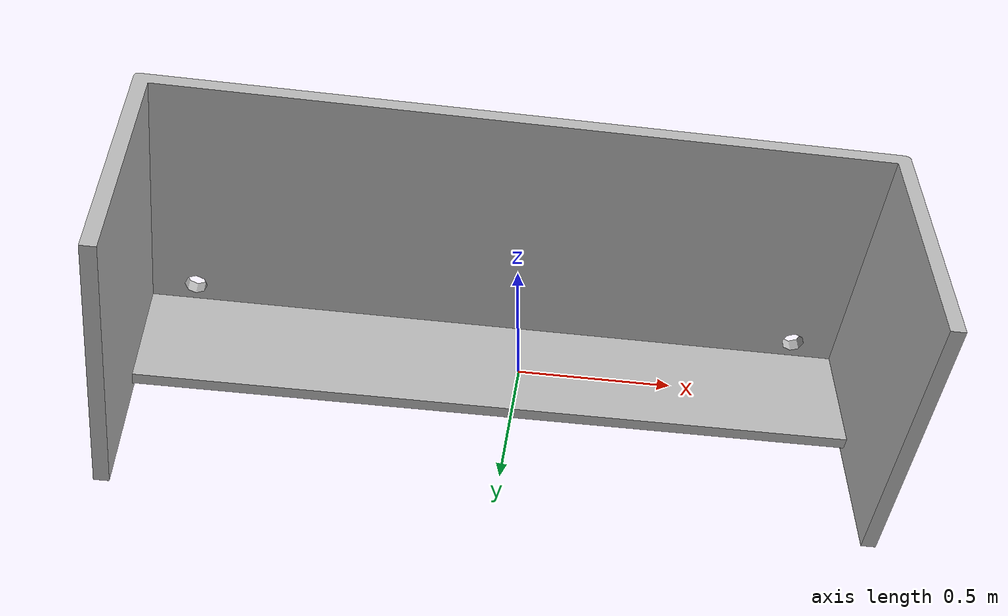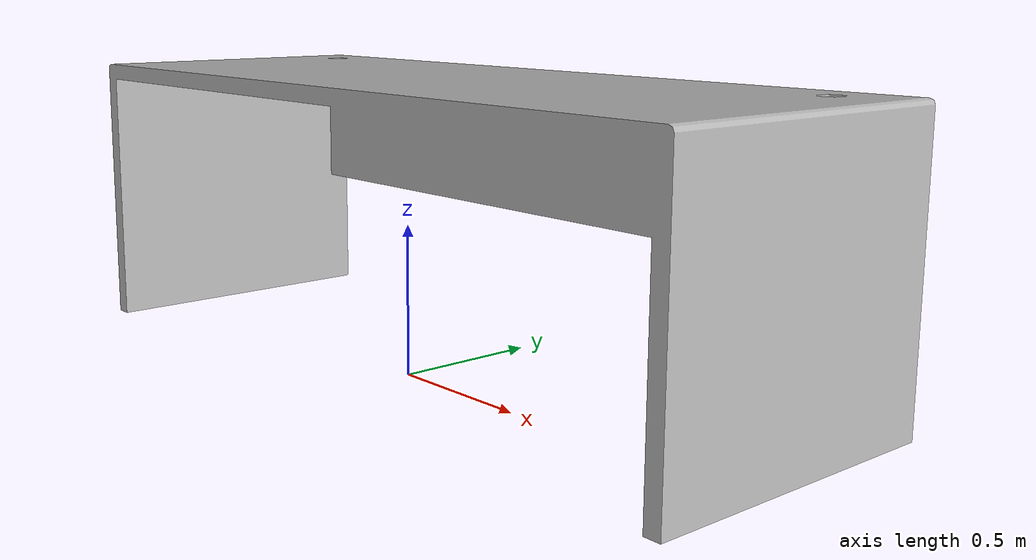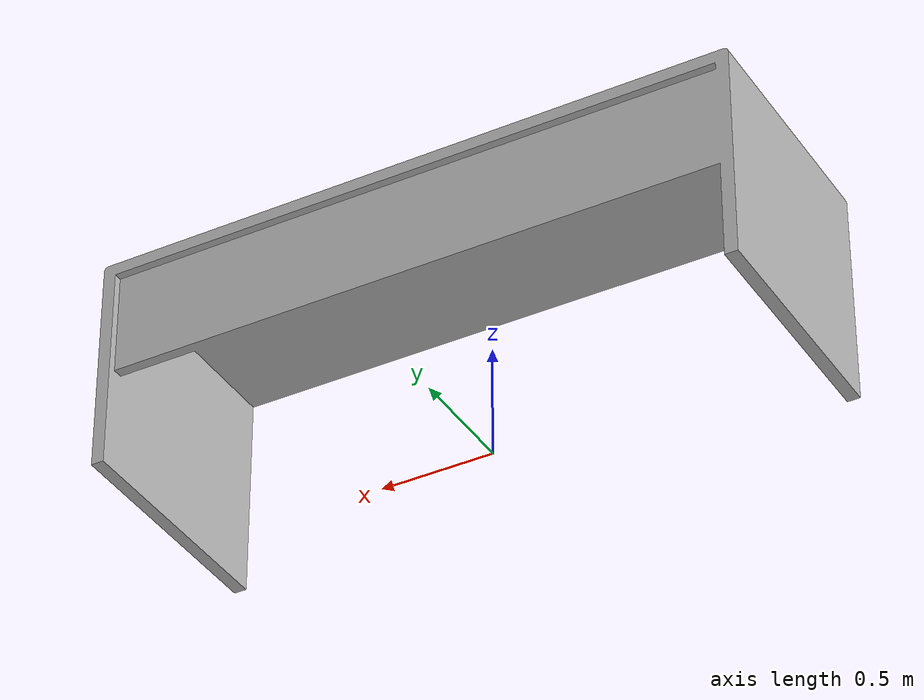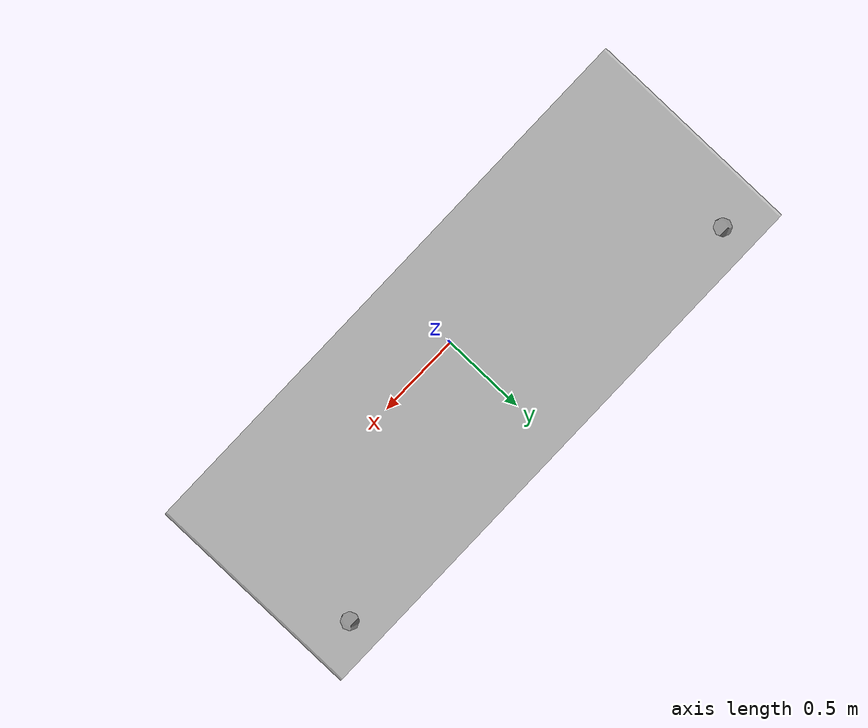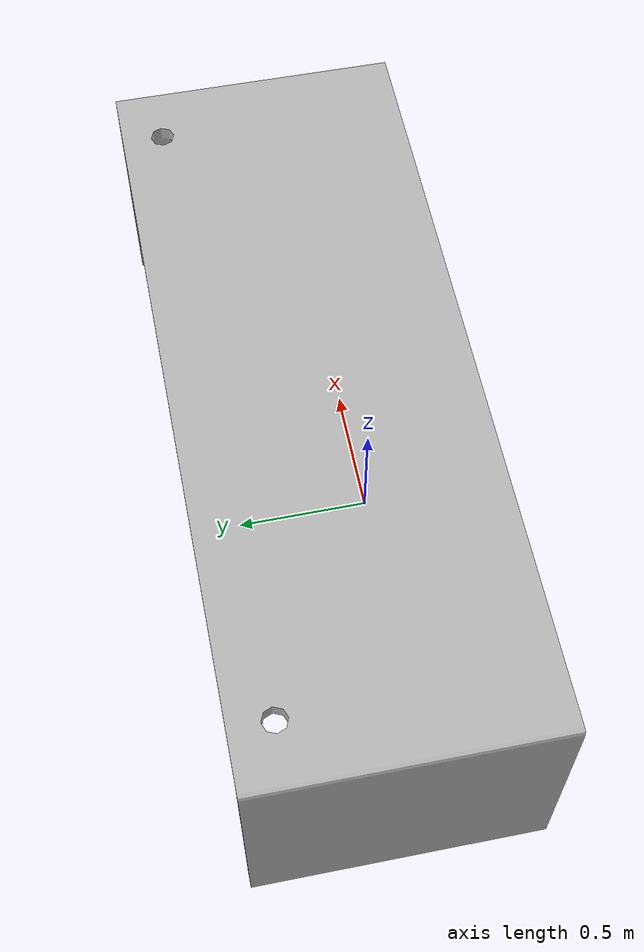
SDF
<?xml version="1.0" ?>
<sdf version='1.5'>
  <model name='desk_add'>
    <static>true</static>
      <link name='desk_add'>
        <pose frame=''>0 0 0 1.57 0 0</pose>
         <collision name='desk_add'>
          <geometry>
            <mesh>
              <scale>0.007 0.007 0.007</scale>
              <uri>model://desk_add/desk.dae</uri>
            </mesh>
          </geometry>
          <max_contacts>10</max_contacts>
        </collision>
        <visual name='desk_add'>
        <cast_shadows>false</cast_shadows>
          <geometry>
            <mesh>
              <scale>0.007 0.007 0.007</scale>
              <uri>model://desk_add/desk.dae</uri>
            </mesh>
          </geometry>
          <material>
            <script>
              <name>desk_add</name>
              <uri>model://desk_add/desk.dae</uri>
            </script>
          </material>
        </visual>
      </link>
  </model>
</sdf>
